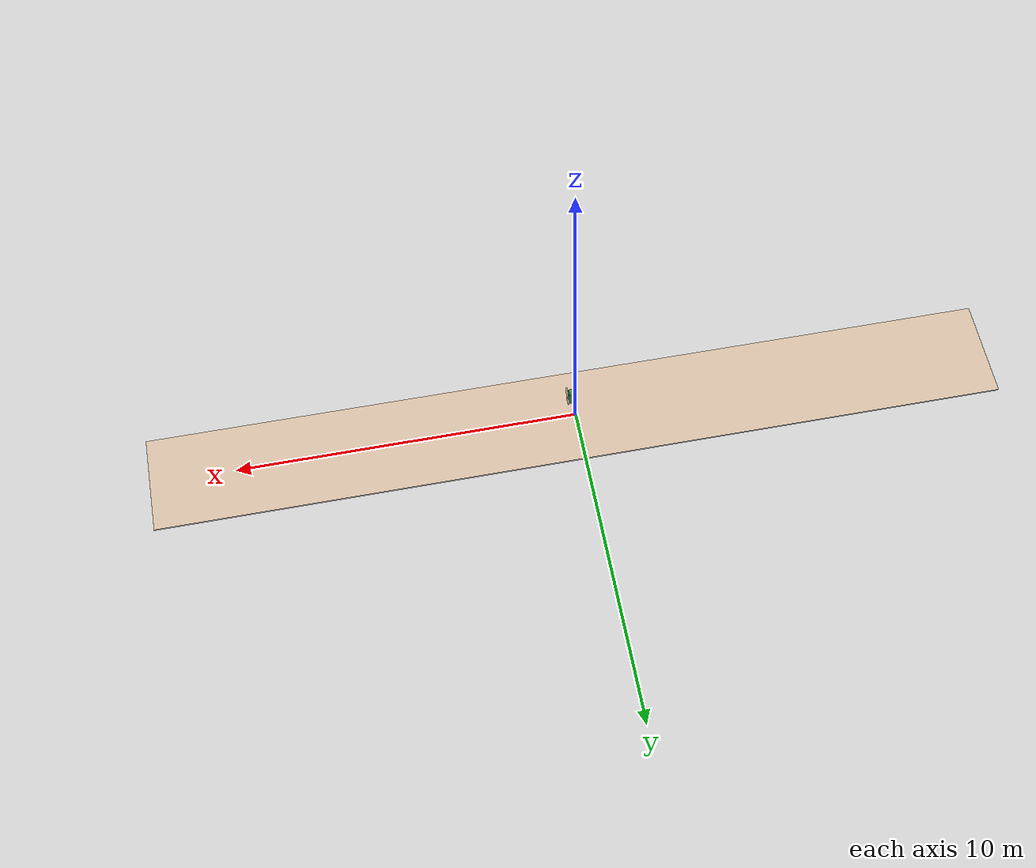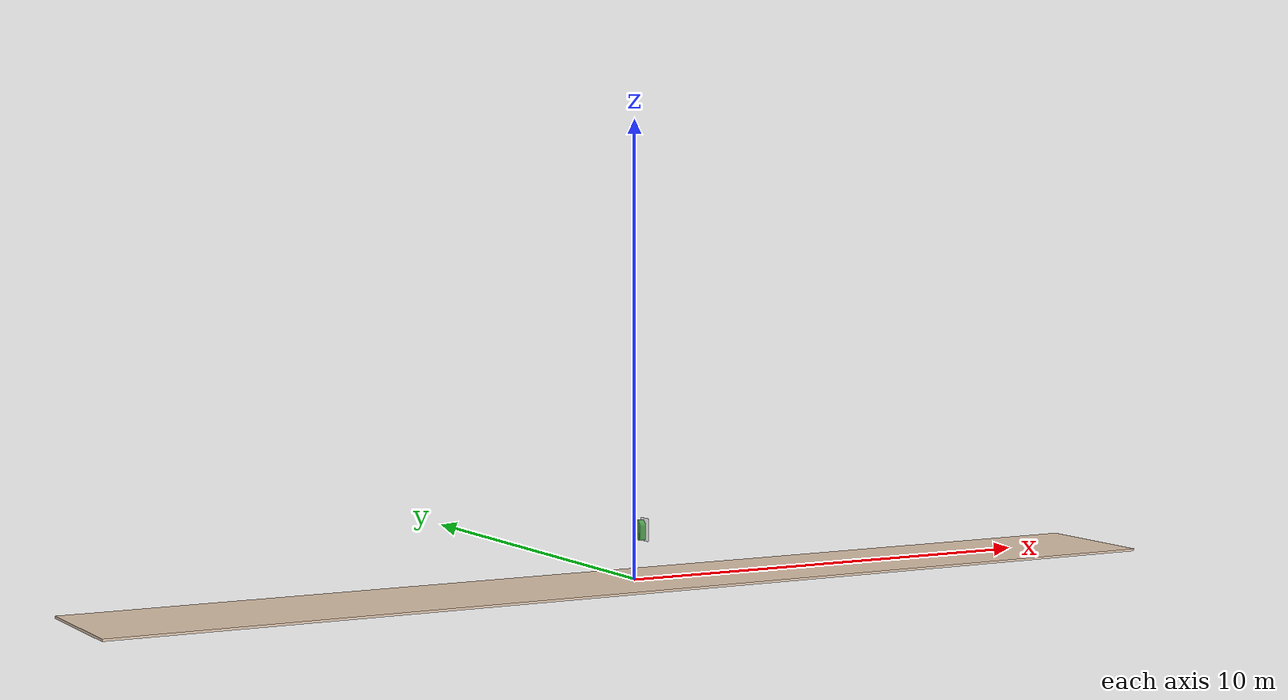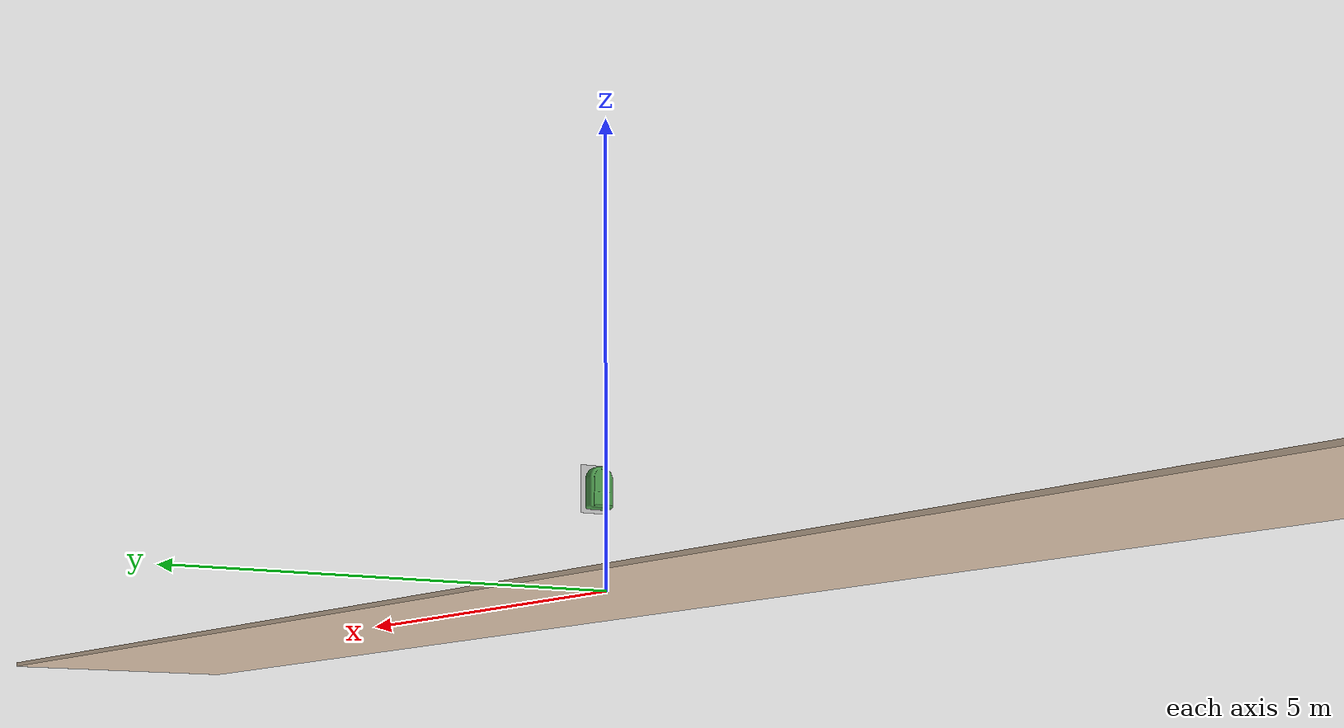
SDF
<?xml version='1.0'?>
<sdf version='1.9'>

  <model name='centaur_sim_scene'>
  <link name='ground'>
    <visual name='visual'>
      <pose>0 0 -0.025 0 0 0</pose>
      <geometry>
        <box>  <size>25.0 3.0 0.05</size> </box>
      </geometry>
      <material>
        <diffuse>0.9 0.8 0.7 1.0</diffuse>
      </material>
    </visual>
    <collision name="collision">
      <pose>0 0 -0.025 0 0 0</pose>
      <geometry>
        <box>  <size>25.0 3.0 0.05</size> </box>
      </geometry>
    </collision>
  </link>

  <frame name='x_block_init_frame' attached_to='ground'>
    <pose relative_to='ground'>0.217 0 0.990 0 0 0</pose>
  </frame>
  <link name='x_block'>
    <pose relative_to='x_block_init_frame'>0 0 0 0 0 0</pose>
  </link>
  <joint name='x_prismastic_joint' type='prismatic'>
    <pose relative_to='x_block_init_frame'>0 0 0 0 0 0</pose>
    <parent>ground</parent>
    <child>x_block</child>
    <axis>
      <xyz>1 0 0</xyz>
      <limit>
      </limit>
    </axis>
  </joint>

  <frame name='y_block_init_frame' attached_to='x_block'>
    <pose relative_to='x_block'>0.0 0 0 0 0 0</pose>
  </frame>
  <link name='y_block'>
    <pose relative_to='y_block_init_frame'>0 0 0 0 0 0</pose>
  </link>
  <joint name='y_prismastic_joint' type='prismatic'>
    <pose relative_to='y_block_init_frame'>0 0 0 0 0 0</pose>
    <parent>x_block</parent>
    <child>y_block</child>
    <axis>
      <xyz>0 1 0</xyz>
      <limit>
      </limit>
    </axis>
  </joint>

  <frame name='z_block_init_frame' attached_to='y_block'>
    <pose relative_to='y_block'>0 0.0 0 0 0 0</pose>
  </frame>
  <link name='z_block'>
    <pose relative_to='z_block_init_frame'>0 0 0 0 0 0</pose>
    <visual name='visual'>
      <pose relative_to='z_block_init_frame'>0.03 0 0.1 0 0 0</pose>
      <geometry> <box> <size>0.02 0.3 0.5</size> </box> </geometry>
      <material>
        <diffuse>0.1 0.1 0.1 0.2</diffuse>
      </material>
    </visual>
  </link>
  <joint name='z_prismastic_joint' type='prismatic'>
    <pose relative_to='z_block_init_frame'>0 0 0 0 0 0</pose>
    <parent>y_block</parent>
    <child>z_block</child>
    <axis>
      <xyz>0 0 1</xyz>
      <limit>
      </limit>
    </axis>
  </joint>

  <frame name='f_t_sensor_frame' attached_to='z_block'>
    <pose relative_to='z_block'>0 0 0.0 0 0 0</pose>
  </frame>
  <link name='f_t_sensor_link'>
    <pose relative_to='f_t_sensor_frame'>0 0 0 0 0 0</pose>
    <visual name='visual'>
      <pose relative_to='f_t_sensor_frame'>0 0 0 0 1.57 0</pose>
      <geometry>
       <cylinder>
       <radius>0.05</radius> <length>0.04</length>
       </cylinder>
      </geometry>
      <material>
        <diffuse>0.95 0.95 0.95 1.0</diffuse>
      </material>
    </visual>
  </link>
  <joint name='f_t_sensor_fixed_joint' type='fixed'>
    <pose relative_to='f_t_sensor_frame'>0.0000 0 0 0 0 0</pose>
    <parent>z_block</parent>
    <child>f_t_sensor_link</child>
  </joint>

  <frame name='ball_joint_frame' attached_to='f_t_sensor_link'>
    <pose relative_to='f_t_sensor_link'>-0.001 0 0 0 0 0</pose>
  </frame>

  <joint name='ball_joint_fixed' type='fixed'>
    <pose relative_to='ball_joint_frame'>0 0 0 0 0 0</pose>
    <parent>f_t_sensor_link</parent>
    <child>load_link</child>
  </joint>

  <link name='load_link'>
    <pose relative_to='f_t_sensor_link'>-0.06 0 0.1 0 -1.57 0</pose>
    <visual name='visual'>
      <pose relative_to='f_t_sensor_link'>-0.02 0.135 -0.12 1.57 0 -1.57</pose>
      <material>
        <diffuse>0.3 0.6 0.3 1.0</diffuse>
      </material>
      <geometry>
          <mesh>
            <scale>0.0009 0.0009 0.0009</scale>
            <uri>/home/haoyun/Data/Code/drake/workspace/centaur_sim/data/backpack_obj_paint.obj</uri>
          </mesh>
      </geometry>
    </visual>
    <inertial>
      <mass>30.0</mass>
      <inertia> <ixx>0.125</ixx> <iyy>0.49155</iyy> <izz>0.56656</izz> </inertia>
    </inertial>
    <collision name='collision'>
      <pose relative_to='f_t_sensor_link'>0 0 0.16 0 0 0</pose>
      <geometry>
        <box> <size>0.432 0.2 0.1</size> </box>
      </geometry>
    </collision>
  </link>

  </model>

</sdf>
